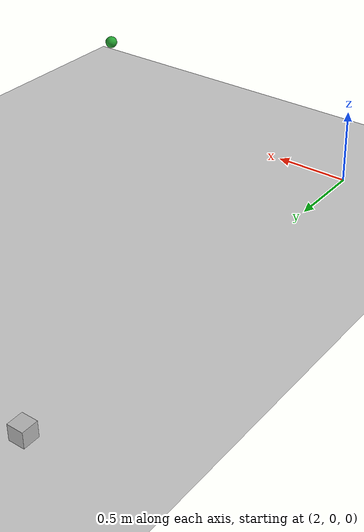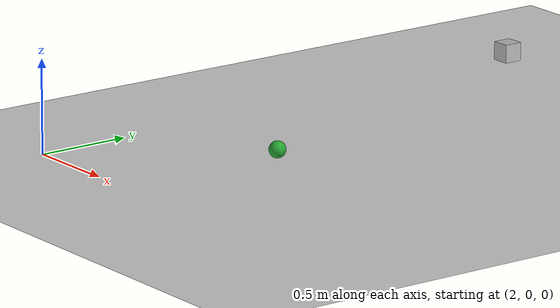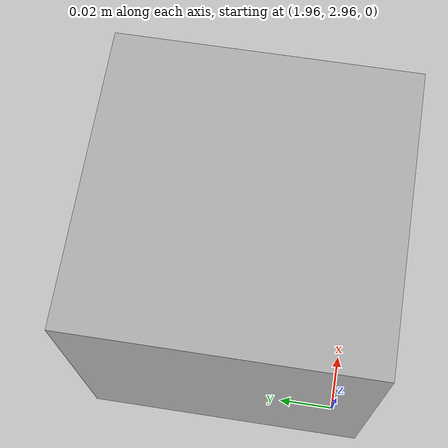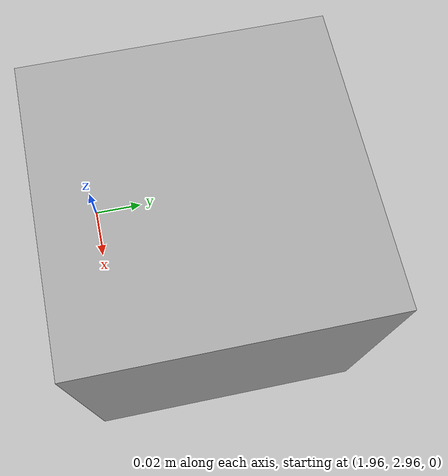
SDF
<sdf version="1.5">
 <world name="default">
  <physics name="default_physics" default="0" type="ode">
   <gravity>0 0 -9.81</gravity>
   <simbody>
    <accuracy>0.005</accuracy>
    <max_transient_velocity>0.005</max_transient_velocity>
    <contact><stiffness>1e+08</stiffness><dissipation>20</dissipation></contact>
   </simbody>
   <ode>
    <solver>
     <use_dynamic_moi_rescaling>1</use_dynamic_moi_rescaling>
     <type>quick</type>
     <iters>200</iters>
     <sor>1</sor>
    </solver>
    <constraints>
     <cfm>0</cfm>
     <erp>0.2</erp>
     <contact_max_correcting_vel>100</contact_max_correcting_vel>
     <contact_surface_layer>0</contact_surface_layer>
    </constraints>
   </ode>
   <real_time_update_rate>1000</real_time_update_rate>
   <max_step_size>0.001</max_step_size>
   <real_time_factor>1</real_time_factor>
   <magnetic_field>5.5645e-06 2.28758e-05 -4.23884e-05</magnetic_field>
  </physics>
  <light name="sun" type="directional">
   <pose>0 0 10 0 -0 0</pose>
   <diffuse>0.8 0.8 0.8 1</diffuse>
   <specular>0.2 0.2 0.2 1</specular>
   <attenuation>
    <range>1000</range>
    <constant>0.9</constant>
    <linear>0.01</linear>
    <quadratic>0.001</quadratic>
   </attenuation>
   <direction>-0.5 0.1 -0.9</direction>
  </light>
  <model name="ground_plane">
   <static>1</static>
   <link name="link">
    <collision name="collision">
     <geometry><plane><normal>0 0 1</normal><size>100 100</size></plane></geometry>
     <surface><friction><ode><mu>100</mu><mu2>50</mu2></ode></friction></surface>
    </collision>
    <visual name="visual">
     <cast_shadows>0</cast_shadows>
     <geometry><plane><normal>0 0 1</normal><size>100 100</size></plane></geometry>
     <material>
      <script><uri>file://media/materials/scripts/gazebo.material</uri><name>Gazebo/Grey</name></script>
     </material>
    </visual>
   </link>
  </model>
  <model name="unit_sphere_1">
   <plugin filename="libball_throwing.so" name="ball_throwing"/>
   <pose>4 0 0.5 0 -0 0</pose>
   <link name="link">
    <inertial>
     <mass>1</mass>
     <inertia><ixx>1</ixx><ixy>0</ixy><ixz>0</ixz><iyy>1</iyy><iyz>0</iyz><izz>1</izz></inertia>
    </inertial>
    <collision name="collision"><geometry><sphere><radius>0.042406</radius></sphere></geometry></collision>
    <visual name="visual">
     <geometry><sphere><radius>0.0424061</radius></sphere></geometry>
     <material>
      <script><uri>file://media/materials/scripts/gazebo.material</uri><name>Gazebo/Green</name></script>
     </material>
    </visual>
   </link>
  </model>
  <model name="camera">
   <pose>2 3 0.05 0 -0 0</pose>
   <link name="camera::link">
    <inertial>
     <mass>0.1</mass>
     <inertia>
      <ixx>0.000166667</ixx>
      <iyy>0.000166667</iyy>
      <izz>0.000166667</izz>
      <ixy>0</ixy>
      <ixz>0</ixz>
      <iyz>0</iyz>
     </inertia>
    </inertial>
    <collision name="collision"><geometry><box><size>0.1 0.1 0.1</size></box></geometry></collision>
    <visual name="visual"><geometry><box><size>0.1 0.1 0.1</size></box></geometry></visual>
    <sensor name="camera" type="camera">
     <camera name="extra_camera">
      <horizontal_fov>1.047</horizontal_fov>
      <image><width>320</width><height>240</height></image>
      <clip><near>0.1</near><far>100</far></clip>
     </camera>
     <plugin name="extra_camera_controller" filename="libgazebo_ros_camera.so">
      <alwaysOn>true</alwaysOn>
      <updateRate>0.0</updateRate>
      <cameraName>extra_camera/camera</cameraName>
      <imageTopicName>extra_camera_image</imageTopicName>
      <cameraInfoTopicName>extra_camera_info</cameraInfoTopicName>
      <frameName>left_camera_optical_frame</frameName>
      <hackBaseline>0.07</hackBaseline>
      <distortionK1>0.0</distortionK1>
      <distortionK2>0.0</distortionK2>
      <distortionK3>0.0</distortionK3>
      <distortionT1>0.0</distortionT1>
      <distortionT2>0.0</distortionT2>
     </plugin>
     <always_on>1</always_on>
     <update_rate>30</update_rate>
     <visualize>1</visualize>
    </sensor>
    <gravity>0</gravity>
   </link>
  </model>
  <plugin name="vrc_plugin" filename="libVRCPlugin.so">
   <atlas><model_name>atlas</model_name><pin_link>utorso</pin_link></atlas>
   <drc_vehicle><model_name>golf_cart</model_name><seat_link>chassis</seat_link></drc_vehicle>
   <drc_fire_hose>
    <fire_hose_model>fire_hose</fire_hose_model>
    <coupling_link>coupling</coupling_link>
    <standpipe_model>standpipe</standpipe_model>
    <spout_link>standpipe</spout_link>
    <thread_pitch>-1000</thread_pitch>
    <coupling_relative_pose>1.17038e-05 -0.125623 0.35 -0.0412152 -1.57078 1.61199</coupling_relative_pose>
   </drc_fire_hose>
  </plugin>
  <plugin name="vrc_scoring" filename="libVRCScoringPlugin.so"/>
  <scene><ambient>0.4 0.4 0.4 1</ambient><background>0.7 0.7 0.7 1</background><shadows>1</shadows></scene>
  <spherical_coordinates>
   <surface_model>EARTH_WGS84</surface_model>
   <latitude_deg>0</latitude_deg>
   <longitude_deg>0</longitude_deg>
   <elevation>0</elevation>
   <heading_deg>0</heading_deg>
  </spherical_coordinates>
 </world>
</sdf>
